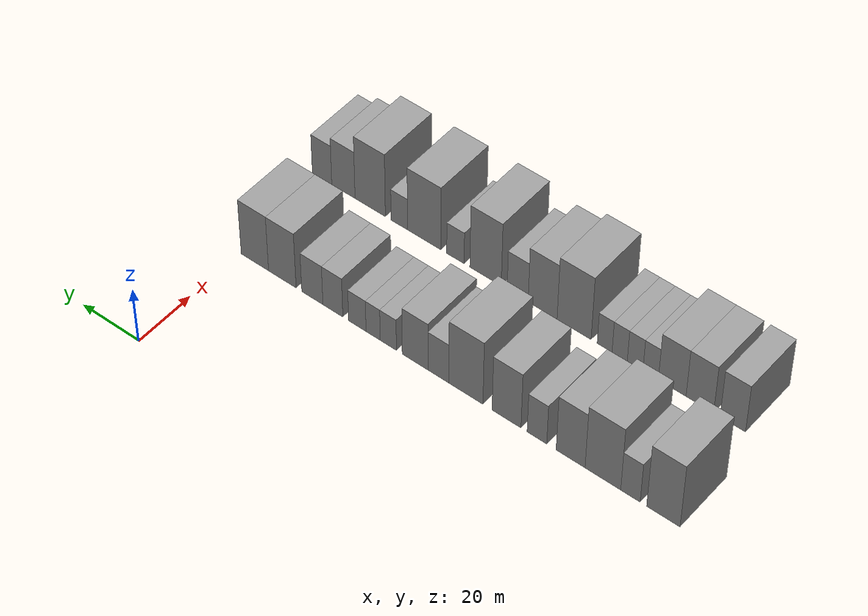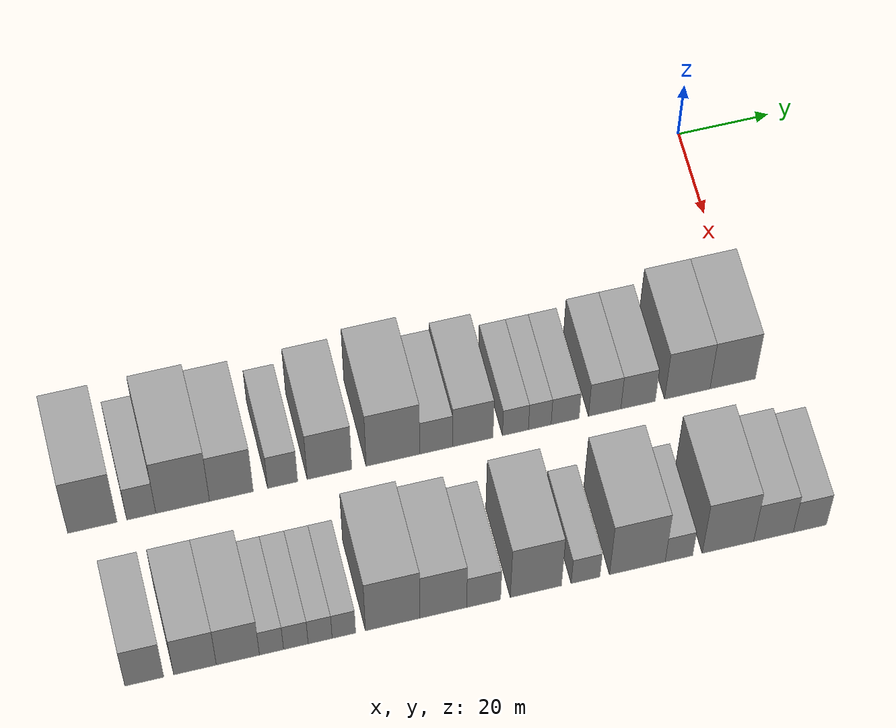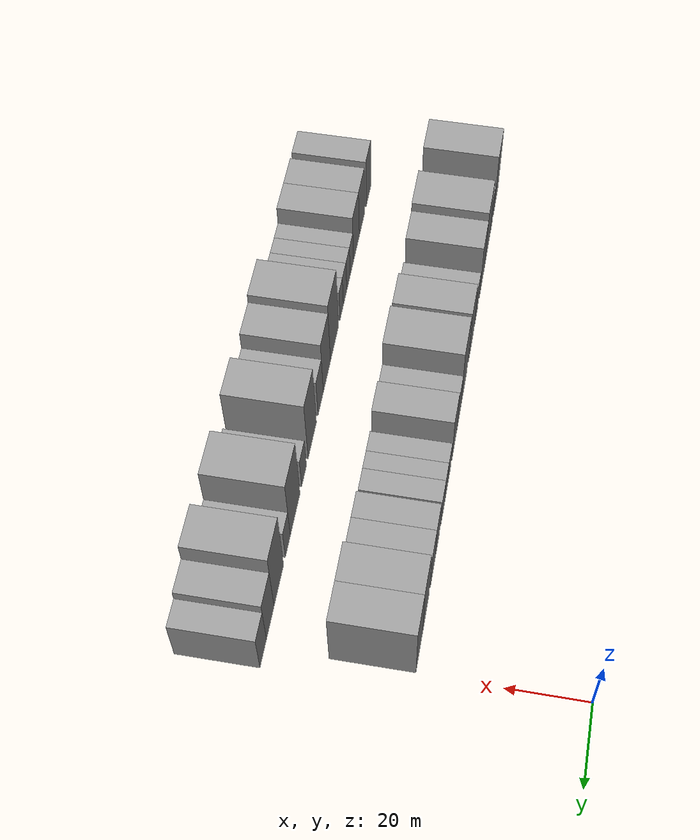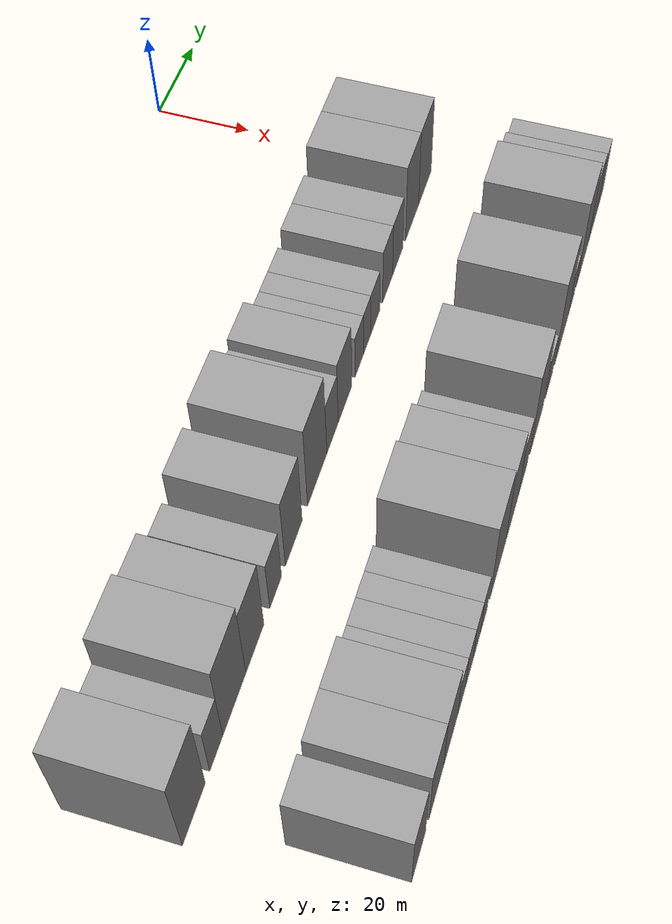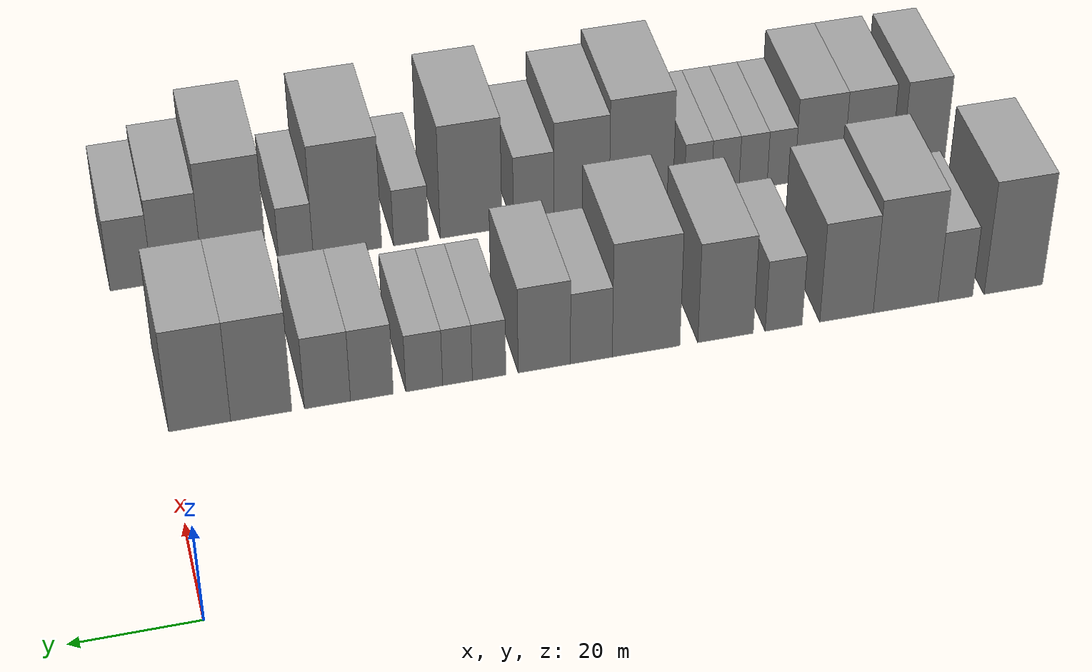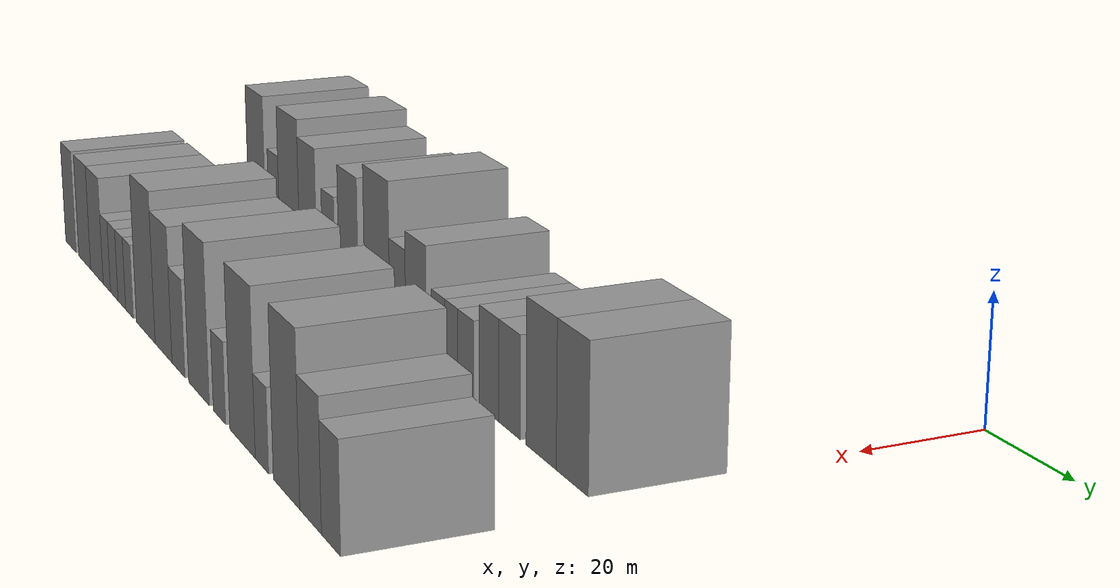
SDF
<sdf version="1.6">
 <world name="default">
  <model name="building_17">
   <static>1</static>
   <pose>50.0000 -140.2153 0 0.000000 0.000000 0.000000</pose>
   <link name="link">
    <pose>0 0 12.00 0 0 0</pose>
    <collision name="collision"><geometry><box><size>20.0000 10.2103 24.0000</size></box></geometry></collision>
    <visual name="visual">
     <cast_shadows>0</cast_shadows>
     <geometry><box><size>20.0000 10.2103 24.0000</size></box></geometry>
     <material>
      <script>
       <uri>model://grey_wall/materials/scripts</uri>
       <uri>model://grey_wall/materials/textures</uri>
       <name>vrc/grey_wall</name>
      </script>
     </material>
    </visual>
   </link>
  </model>
  <model name="building_18">
   <static>1</static>
   <pose>50.0000 -130.0983 0 0.000000 0.000000 0.000000</pose>
   <link name="link">
    <pose>0 0 7.50 0 0 0</pose>
    <collision name="collision"><geometry><box><size>20.0000 6.0237 15.0000</size></box></geometry></collision>
    <visual name="visual">
     <cast_shadows>0</cast_shadows>
     <geometry><box><size>20.0000 6.0237 15.0000</size></box></geometry>
     <material>
      <script>
       <uri>model://grey_wall/materials/scripts</uri>
       <uri>model://grey_wall/materials/textures</uri>
       <name>vrc/grey_wall</name>
      </script>
     </material>
    </visual>
   </link>
  </model>
  <model name="building_19">
   <static>1</static>
   <pose>50.0000 -121.5091 0 0.000000 0.000000 0.000000</pose>
   <link name="link">
    <pose>0 0 12.00 0 0 0</pose>
    <collision name="collision"><geometry><box><size>20.0000 11.1546 24.0000</size></box></geometry></collision>
    <visual name="visual">
     <cast_shadows>0</cast_shadows>
     <geometry><box><size>20.0000 11.1546 24.0000</size></box></geometry>
     <material>
      <script>
       <uri>model://grey_wall/materials/scripts</uri>
       <uri>model://grey_wall/materials/textures</uri>
       <name>vrc/grey_wall</name>
      </script>
     </material>
    </visual>
   </link>
  </model>
  <model name="building_20">
   <static>1</static>
   <pose>50.0000 -111.3665 0 0.000000 0.000000 0.000000</pose>
   <link name="link">
    <pose>0 0 10.50 0 0 0</pose>
    <collision name="collision"><geometry><box><size>20.0000 9.1307 21.0000</size></box></geometry></collision>
    <visual name="visual">
     <cast_shadows>0</cast_shadows>
     <geometry><box><size>20.0000 9.1307 21.0000</size></box></geometry>
     <material>
      <script>
       <uri>model://grey_wall/materials/scripts</uri>
       <uri>model://grey_wall/materials/textures</uri>
       <name>vrc/grey_wall</name>
      </script>
     </material>
    </visual>
   </link>
  </model>
  <model name="building_21">
   <static>1</static>
   <pose>50.0000 -100.6610 0 0.000000 0.000000 0.000000</pose>
   <link name="link">
    <pose>0 0 7.50 0 0 0</pose>
    <collision name="collision"><geometry><box><size>20.0000 6.2802 15.0000</size></box></geometry></collision>
    <visual name="visual">
     <cast_shadows>0</cast_shadows>
     <geometry><box><size>20.0000 6.2802 15.0000</size></box></geometry>
     <material>
      <script>
       <uri>model://grey_wall/materials/scripts</uri>
       <uri>model://grey_wall/materials/textures</uri>
       <name>vrc/grey_wall</name>
      </script>
     </material>
    </visual>
   </link>
  </model>
  <model name="building_22">
   <static>1</static>
   <pose>50.0000 -90.8468 0 0.000000 0.000000 0.000000</pose>
   <link name="link">
    <pose>0 0 10.50 0 0 0</pose>
    <collision name="collision"><geometry><box><size>20.0000 9.3482 21.0000</size></box></geometry></collision>
    <visual name="visual">
     <cast_shadows>0</cast_shadows>
     <geometry><box><size>20.0000 9.3482 21.0000</size></box></geometry>
     <material>
      <script>
       <uri>model://grey_wall/materials/scripts</uri>
       <uri>model://grey_wall/materials/textures</uri>
       <name>vrc/grey_wall</name>
      </script>
     </material>
    </visual>
   </link>
  </model>
  <model name="building_23">
   <static>1</static>
   <pose>50.0000 -77.5330 0 0.000000 0.000000 0.000000</pose>
   <link name="link">
    <pose>0 0 12.00 0 0 0</pose>
    <collision name="collision"><geometry><box><size>20.0000 11.2795 24.0000</size></box></geometry></collision>
    <visual name="visual">
     <cast_shadows>0</cast_shadows>
     <geometry><box><size>20.0000 11.2795 24.0000</size></box></geometry>
     <material>
      <script>
       <uri>model://grey_wall/materials/scripts</uri>
       <uri>model://grey_wall/materials/textures</uri>
       <name>vrc/grey_wall</name>
      </script>
     </material>
    </visual>
   </link>
  </model>
  <model name="building_24">
   <static>1</static>
   <pose>50.0000 -68.4396 0 0.000000 0.000000 0.000000</pose>
   <link name="link">
    <pose>0 0 7.50 0 0 0</pose>
    <collision name="collision"><geometry><box><size>20.0000 6.9074 15.0000</size></box></geometry></collision>
    <visual name="visual">
     <cast_shadows>0</cast_shadows>
     <geometry><box><size>20.0000 6.9074 15.0000</size></box></geometry>
     <material>
      <script>
       <uri>model://grey_wall/materials/scripts</uri>
       <uri>model://grey_wall/materials/textures</uri>
       <name>vrc/grey_wall</name>
      </script>
     </material>
    </visual>
   </link>
  </model>
  <model name="building_25">
   <static>1</static>
   <pose>50.0000 -60.6884 0 0.000000 0.000000 0.000000</pose>
   <link name="link">
    <pose>0 0 9.00 0 0 0</pose>
    <collision name="collision"><geometry><box><size>20.0000 8.5951 18.0000</size></box></geometry></collision>
    <visual name="visual">
     <cast_shadows>0</cast_shadows>
     <geometry><box><size>20.0000 8.5951 18.0000</size></box></geometry>
     <material>
      <script>
       <uri>model://grey_wall/materials/scripts</uri>
       <uri>model://grey_wall/materials/textures</uri>
       <name>vrc/grey_wall</name>
      </script>
     </material>
    </visual>
   </link>
  </model>
  <model name="building_26">
   <static>1</static>
   <pose>50.0000 -51.6435 0 0.000000 0.000000 0.000000</pose>
   <link name="link">
    <pose>0 0 6.00 0 0 0</pose>
    <collision name="collision"><geometry><box><size>20.0000 5.4947 12.0000</size></box></geometry></collision>
    <visual name="visual">
     <cast_shadows>0</cast_shadows>
     <geometry><box><size>20.0000 5.4947 12.0000</size></box></geometry>
     <material>
      <script>
       <uri>model://grey_wall/materials/scripts</uri>
       <uri>model://grey_wall/materials/textures</uri>
       <name>vrc/grey_wall</name>
      </script>
     </material>
    </visual>
   </link>
  </model>
  <model name="building_27">
   <static>1</static>
   <pose>50.0000 -46.4779 0 0.000000 0.000000 0.000000</pose>
   <link name="link">
    <pose>0 0 6.00 0 0 0</pose>
    <collision name="collision"><geometry><box><size>20.0000 4.8365 12.0000</size></box></geometry></collision>
    <visual name="visual">
     <cast_shadows>0</cast_shadows>
     <geometry><box><size>20.0000 4.8365 12.0000</size></box></geometry>
     <material>
      <script>
       <uri>model://grey_wall/materials/scripts</uri>
       <uri>model://grey_wall/materials/textures</uri>
       <name>vrc/grey_wall</name>
      </script>
     </material>
    </visual>
   </link>
  </model>
  <model name="building_28">
   <static>1</static>
   <pose>50.0000 -41.0760 0 0.000000 0.000000 0.000000</pose>
   <link name="link">
    <pose>0 0 6.00 0 0 0</pose>
    <collision name="collision"><geometry><box><size>20.0000 5.9673 12.0000</size></box></geometry></collision>
    <visual name="visual">
     <cast_shadows>0</cast_shadows>
     <geometry><box><size>20.0000 5.9673 12.0000</size></box></geometry>
     <material>
      <script>
       <uri>model://grey_wall/materials/scripts</uri>
       <uri>model://grey_wall/materials/textures</uri>
       <name>vrc/grey_wall</name>
      </script>
     </material>
    </visual>
   </link>
  </model>
  <model name="building_29">
   <static>1</static>
   <pose>50.0000 -32.6428 0 0.000000 0.000000 0.000000</pose>
   <link name="link">
    <pose>0 0 7.50 0 0 0</pose>
    <collision name="collision"><geometry><box><size>20.0000 6.8992 15.0000</size></box></geometry></collision>
    <visual name="visual">
     <cast_shadows>0</cast_shadows>
     <geometry><box><size>20.0000 6.8992 15.0000</size></box></geometry>
     <material>
      <script>
       <uri>model://grey_wall/materials/scripts</uri>
       <uri>model://grey_wall/materials/textures</uri>
       <name>vrc/grey_wall</name>
      </script>
     </material>
    </visual>
   </link>
  </model>
  <model name="building_30">
   <static>1</static>
   <pose>50.0000 -25.5044 0 0.000000 0.000000 0.000000</pose>
   <link name="link">
    <pose>0 0 7.50 0 0 0</pose>
    <collision name="collision"><geometry><box><size>20.0000 7.3777 15.0000</size></box></geometry></collision>
    <visual name="visual">
     <cast_shadows>0</cast_shadows>
     <geometry><box><size>20.0000 7.3777 15.0000</size></box></geometry>
     <material>
      <script>
       <uri>model://grey_wall/materials/scripts</uri>
       <uri>model://grey_wall/materials/textures</uri>
       <name>vrc/grey_wall</name>
      </script>
     </material>
    </visual>
   </link>
  </model>
  <model name="building_31">
   <static>1</static>
   <pose>50.0000 -14.9525 0 0.000000 0.000000 0.000000</pose>
   <link name="link">
    <pose>0 0 10.50 0 0 0</pose>
    <collision name="collision"><geometry><box><size>20.0000 9.7260 21.0000</size></box></geometry></collision>
    <visual name="visual">
     <cast_shadows>0</cast_shadows>
     <geometry><box><size>20.0000 9.7260 21.0000</size></box></geometry>
     <material>
      <script>
       <uri>model://grey_wall/materials/scripts</uri>
       <uri>model://grey_wall/materials/textures</uri>
       <name>vrc/grey_wall</name>
      </script>
     </material>
    </visual>
   </link>
  </model>
  <model name="building_32">
   <static>1</static>
   <pose>50.0000 -5.2037 0 0.000000 0.000000 0.000000</pose>
   <link name="link">
    <pose>0 0 10.50 0 0 0</pose>
    <collision name="collision"><geometry><box><size>20.0000 9.7716 21.0000</size></box></geometry></collision>
    <visual name="visual">
     <cast_shadows>0</cast_shadows>
     <geometry><box><size>20.0000 9.7716 21.0000</size></box></geometry>
     <material>
      <script>
       <uri>model://grey_wall/materials/scripts</uri>
       <uri>model://grey_wall/materials/textures</uri>
       <name>vrc/grey_wall</name>
      </script>
     </material>
    </visual>
   </link>
  </model>
  <model name="building_81">
   <static>1</static>
   <pose>85.0000 -136.7139 0 0.000000 0.000000 0.000000</pose>
   <link name="link">
    <pose>0 0 9.00 0 0 0</pose>
    <collision name="collision"><geometry><box><size>20.0000 7.9003 18.0000</size></box></geometry></collision>
    <visual name="visual">
     <cast_shadows>0</cast_shadows>
     <geometry><box><size>20.0000 7.9003 18.0000</size></box></geometry>
     <material>
      <script>
       <uri>model://grey_wall/materials/scripts</uri>
       <uri>model://grey_wall/materials/textures</uri>
       <name>vrc/grey_wall</name>
      </script>
     </material>
    </visual>
   </link>
  </model>
  <model name="building_82">
   <static>1</static>
   <pose>85.0000 -126.4330 0 0.000000 0.000000 0.000000</pose>
   <link name="link">
    <pose>0 0 9.00 0 0 0</pose>
    <collision name="collision"><geometry><box><size>20.0000 8.6615 18.0000</size></box></geometry></collision>
    <visual name="visual">
     <cast_shadows>0</cast_shadows>
     <geometry><box><size>20.0000 8.6615 18.0000</size></box></geometry>
     <material>
      <script>
       <uri>model://grey_wall/materials/scripts</uri>
       <uri>model://grey_wall/materials/textures</uri>
       <name>vrc/grey_wall</name>
      </script>
     </material>
    </visual>
   </link>
  </model>
  <model name="building_83">
   <static>1</static>
   <pose>85.0000 -117.7067 0 0.000000 0.000000 0.000000</pose>
   <link name="link">
    <pose>0 0 9.00 0 0 0</pose>
    <collision name="collision"><geometry><box><size>20.0000 8.7912 18.0000</size></box></geometry></collision>
    <visual name="visual">
     <cast_shadows>0</cast_shadows>
     <geometry><box><size>20.0000 8.7912 18.0000</size></box></geometry>
     <material>
      <script>
       <uri>model://grey_wall/materials/scripts</uri>
       <uri>model://grey_wall/materials/textures</uri>
       <name>vrc/grey_wall</name>
      </script>
     </material>
    </visual>
   </link>
  </model>
  <model name="building_84">
   <static>1</static>
   <pose>85.0000 -110.8470 0 0.000000 0.000000 0.000000</pose>
   <link name="link">
    <pose>0 0 6.00 0 0 0</pose>
    <collision name="collision"><geometry><box><size>20.0000 4.9282 12.0000</size></box></geometry></collision>
    <visual name="visual">
     <cast_shadows>0</cast_shadows>
     <geometry><box><size>20.0000 4.9282 12.0000</size></box></geometry>
     <material>
      <script>
       <uri>model://grey_wall/materials/scripts</uri>
       <uri>model://grey_wall/materials/textures</uri>
       <name>vrc/grey_wall</name>
      </script>
     </material>
    </visual>
   </link>
  </model>
  <model name="building_85">
   <static>1</static>
   <pose>85.0000 -105.8679 0 0.000000 0.000000 0.000000</pose>
   <link name="link">
    <pose>0 0 6.00 0 0 0</pose>
    <collision name="collision"><geometry><box><size>20.0000 5.0300 12.0000</size></box></geometry></collision>
    <visual name="visual">
     <cast_shadows>0</cast_shadows>
     <geometry><box><size>20.0000 5.0300 12.0000</size></box></geometry>
     <material>
      <script>
       <uri>model://grey_wall/materials/scripts</uri>
       <uri>model://grey_wall/materials/textures</uri>
       <name>vrc/grey_wall</name>
      </script>
     </material>
    </visual>
   </link>
  </model>
  <model name="building_86">
   <static>1</static>
   <pose>85.0000 -100.8920 0 0.000000 0.000000 0.000000</pose>
   <link name="link">
    <pose>0 0 6.00 0 0 0</pose>
    <collision name="collision"><geometry><box><size>20.0000 4.9218 12.0000</size></box></geometry></collision>
    <visual name="visual">
     <cast_shadows>0</cast_shadows>
     <geometry><box><size>20.0000 4.9218 12.0000</size></box></geometry>
     <material>
      <script>
       <uri>model://grey_wall/materials/scripts</uri>
       <uri>model://grey_wall/materials/textures</uri>
       <name>vrc/grey_wall</name>
      </script>
     </material>
    </visual>
   </link>
  </model>
  <model name="building_87">
   <static>1</static>
   <pose>85.0000 -96.0195 0 0.000000 0.000000 0.000000</pose>
   <link name="link">
    <pose>0 0 6.00 0 0 0</pose>
    <collision name="collision"><geometry><box><size>20.0000 4.8233 12.0000</size></box></geometry></collision>
    <visual name="visual">
     <cast_shadows>0</cast_shadows>
     <geometry><box><size>20.0000 4.8233 12.0000</size></box></geometry>
     <material>
      <script>
       <uri>model://grey_wall/materials/scripts</uri>
       <uri>model://grey_wall/materials/textures</uri>
       <name>vrc/grey_wall</name>
      </script>
     </material>
    </visual>
   </link>
  </model>
  <model name="building_88">
   <static>1</static>
   <pose>85.0000 -85.9997 0 0.000000 0.000000 0.000000</pose>
   <link name="link">
    <pose>0 0 12.00 0 0 0</pose>
    <collision name="collision"><geometry><box><size>20.0000 11.2164 24.0000</size></box></geometry></collision>
    <visual name="visual">
     <cast_shadows>0</cast_shadows>
     <geometry><box><size>20.0000 11.2164 24.0000</size></box></geometry>
     <material>
      <script>
       <uri>model://grey_wall/materials/scripts</uri>
       <uri>model://grey_wall/materials/textures</uri>
       <name>vrc/grey_wall</name>
      </script>
     </material>
    </visual>
   </link>
  </model>
  <model name="building_89">
   <static>1</static>
   <pose>85.0000 -75.5719 0 0.000000 0.000000 0.000000</pose>
   <link name="link">
    <pose>0 0 10.50 0 0 0</pose>
    <collision name="collision"><geometry><box><size>20.0000 9.6392 21.0000</size></box></geometry></collision>
    <visual name="visual">
     <cast_shadows>0</cast_shadows>
     <geometry><box><size>20.0000 9.6392 21.0000</size></box></geometry>
     <material>
      <script>
       <uri>model://grey_wall/materials/scripts</uri>
       <uri>model://grey_wall/materials/textures</uri>
       <name>vrc/grey_wall</name>
      </script>
     </material>
    </visual>
   </link>
  </model>
  <model name="building_90">
   <static>1</static>
   <pose>85.0000 -67.2314 0 0.000000 0.000000 0.000000</pose>
   <link name="link">
    <pose>0 0 7.50 0 0 0</pose>
    <collision name="collision"><geometry><box><size>20.0000 7.0418 15.0000</size></box></geometry></collision>
    <visual name="visual">
     <cast_shadows>0</cast_shadows>
     <geometry><box><size>20.0000 7.0418 15.0000</size></box></geometry>
     <material>
      <script>
       <uri>model://grey_wall/materials/scripts</uri>
       <uri>model://grey_wall/materials/textures</uri>
       <name>vrc/grey_wall</name>
      </script>
     </material>
    </visual>
   </link>
  </model>
  <model name="building_91">
   <static>1</static>
   <pose>85.0000 -56.3849 0 0.000000 0.000000 0.000000</pose>
   <link name="link">
    <pose>0 0 12.00 0 0 0</pose>
    <collision name="collision"><geometry><box><size>20.0000 10.6512 24.0000</size></box></geometry></collision>
    <visual name="visual">
     <cast_shadows>0</cast_shadows>
     <geometry><box><size>20.0000 10.6512 24.0000</size></box></geometry>
     <material>
      <script>
       <uri>model://grey_wall/materials/scripts</uri>
       <uri>model://grey_wall/materials/textures</uri>
       <name>vrc/grey_wall</name>
      </script>
     </material>
    </visual>
   </link>
  </model>
  <model name="building_92">
   <static>1</static>
   <pose>85.0000 -46.0631 0 0.000000 0.000000 0.000000</pose>
   <link name="link">
    <pose>0 0 6.00 0 0 0</pose>
    <collision name="collision"><geometry><box><size>20.0000 5.9922 12.0000</size></box></geometry></collision>
    <visual name="visual">
     <cast_shadows>0</cast_shadows>
     <geometry><box><size>20.0000 5.9922 12.0000</size></box></geometry>
     <material>
      <script>
       <uri>model://grey_wall/materials/scripts</uri>
       <uri>model://grey_wall/materials/textures</uri>
       <name>vrc/grey_wall</name>
      </script>
     </material>
    </visual>
   </link>
  </model>
  <model name="building_93">
   <static>1</static>
   <pose>85.0000 -35.2517 0 0.000000 0.000000 0.000000</pose>
   <link name="link">
    <pose>0 0 12.00 0 0 0</pose>
    <collision name="collision"><geometry><box><size>20.0000 11.6307 24.0000</size></box></geometry></collision>
    <visual name="visual">
     <cast_shadows>0</cast_shadows>
     <geometry><box><size>20.0000 11.6307 24.0000</size></box></geometry>
     <material>
      <script>
       <uri>model://grey_wall/materials/scripts</uri>
       <uri>model://grey_wall/materials/textures</uri>
       <name>vrc/grey_wall</name>
      </script>
     </material>
    </visual>
   </link>
  </model>
  <model name="building_94">
   <static>1</static>
   <pose>85.0000 -26.5420 0 0.000000 0.000000 0.000000</pose>
   <link name="link">
    <pose>0 0 6.00 0 0 0</pose>
    <collision name="collision"><geometry><box><size>20.0000 5.7886 12.0000</size></box></geometry></collision>
    <visual name="visual">
     <cast_shadows>0</cast_shadows>
     <geometry><box><size>20.0000 5.7886 12.0000</size></box></geometry>
     <material>
      <script>
       <uri>model://grey_wall/materials/scripts</uri>
       <uri>model://grey_wall/materials/textures</uri>
       <name>vrc/grey_wall</name>
      </script>
     </material>
    </visual>
   </link>
  </model>
  <model name="building_95">
   <static>1</static>
   <pose>85.0000 -16.2480 0 0.000000 0.000000 0.000000</pose>
   <link name="link">
    <pose>0 0 12.00 0 0 0</pose>
    <collision name="collision"><geometry><box><size>20.0000 10.7994 24.0000</size></box></geometry></collision>
    <visual name="visual">
     <cast_shadows>0</cast_shadows>
     <geometry><box><size>20.0000 10.7994 24.0000</size></box></geometry>
     <material>
      <script>
       <uri>model://grey_wall/materials/scripts</uri>
       <uri>model://grey_wall/materials/textures</uri>
       <name>vrc/grey_wall</name>
      </script>
     </material>
    </visual>
   </link>
  </model>
  <model name="building_96">
   <static>1</static>
   <pose>85.0000 -6.6654 0 0.000000 0.000000 0.000000</pose>
   <link name="link">
    <pose>0 0 9.00 0 0 0</pose>
    <collision name="collision"><geometry><box><size>20.0000 8.3659 18.0000</size></box></geometry></collision>
    <visual name="visual">
     <cast_shadows>0</cast_shadows>
     <geometry><box><size>20.0000 8.3659 18.0000</size></box></geometry>
     <material>
      <script>
       <uri>model://grey_wall/materials/scripts</uri>
       <uri>model://grey_wall/materials/textures</uri>
       <name>vrc/grey_wall</name>
      </script>
     </material>
    </visual>
   </link>
  </model>
  <model name="building_97">
   <static>1</static>
   <pose>85.0000 1.0237 0 0.000000 0.000000 0.000000</pose>
   <link name="link">
    <pose>0 0 7.50 0 0 0</pose>
    <collision name="collision"><geometry><box><size>20.0000 7.0124 15.0000</size></box></geometry></collision>
    <visual name="visual">
     <cast_shadows>0</cast_shadows>
     <geometry><box><size>20.0000 7.0124 15.0000</size></box></geometry>
     <material>
      <script>
       <uri>model://grey_wall/materials/scripts</uri>
       <uri>model://grey_wall/materials/textures</uri>
       <name>vrc/grey_wall</name>
      </script>
     </material>
    </visual>
   </link>
  </model>
 </world>
</sdf>
